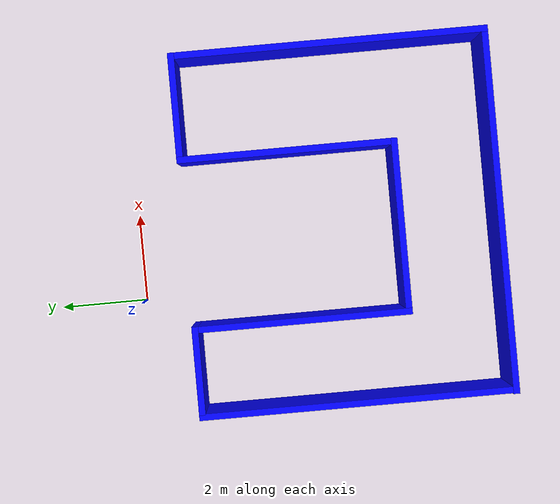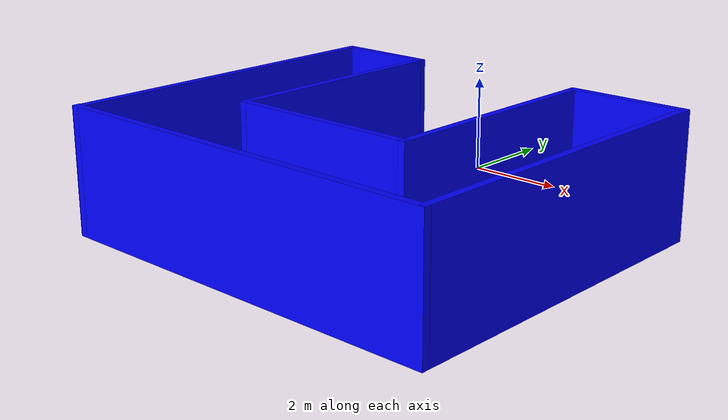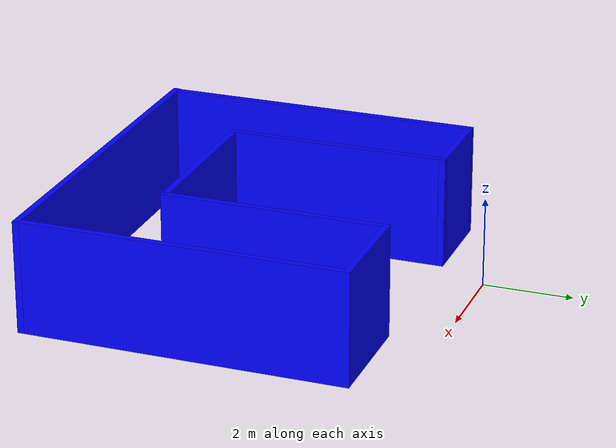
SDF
<?xml version='1.0'?>
<sdf version='1.6'>
  <model name='uworld'>
    <pose frame=''>1.41403 -4.72 0 0 -0 0</pose>
    <link name='Wall_0'>
      <collision name='Wall_0_Collision'>
        <geometry>
          <box>
            <size>2 0.15 2.5</size>
          </box>
        </geometry>
        <pose frame=''>0 0 1.25 0 -0 0</pose>
      </collision>
      <visual name='Wall_0_Visual'>
        <pose frame=''>0 0 1.25 0 -0 0</pose>
        <geometry>
          <box>
            <size>2 0.15 2.5</size>
          </box>
        </geometry>
        <material>
          <script>
            <uri>file://media/materials/scripts/gazebo.material</uri>
            <name>Gazebo/Grey</name>
          </script>
          <ambient>0 0 1 1</ambient>
        </material>
        <meta>
          <layer>0</layer>
        </meta>
      </visual>
      <pose frame=''>-3.02903 3.55 0 0 -0 0</pose>
    </link>
    <link name='Wall_1'>
      <collision name='Wall_1_Collision'>
        <geometry>
          <box>
            <size>5 0.15 2.5</size>
          </box>
        </geometry>
        <pose frame=''>0 0 1.25 0 -0 0</pose>
      </collision>
      <visual name='Wall_1_Visual'>
        <pose frame=''>0 0 1.25 0 -0 0</pose>
        <geometry>
          <box>
            <size>5 0.15 2.5</size>
          </box>
        </geometry>
        <material>
          <script>
            <uri>file://media/materials/scripts/gazebo.material</uri>
            <name>Gazebo/Grey</name>
          </script>
          <ambient>0 0 1 1</ambient>
        </material>
        <meta>
          <layer>0</layer>
        </meta>
      </visual>
      <pose frame=''>-2.10404 1.125 0 0 0 -1.5708</pose>
    </link>
    <link name='Wall_2'>
      <collision name='Wall_2_Collision'>
        <geometry>
          <box>
            <size>4 0.15 2.5</size>
          </box>
        </geometry>
        <pose frame=''>0 0 1.25 0 -0 0</pose>
      </collision>
      <visual name='Wall_2_Visual'>
        <pose frame=''>0 0 1.25 0 -0 0</pose>
        <geometry>
          <box>
            <size>4 0.15 2.5</size>
          </box>
        </geometry>
        <material>
          <script>
            <uri>file://media/materials/scripts/gazebo.material</uri>
            <name>Gazebo/Grey</name>
          </script>
          <ambient>0 0 1 1</ambient>
        </material>
        <meta>
          <layer>0</layer>
        </meta>
      </visual>
      <pose frame=''>-0.179035 -1.3 0 0 -0 0</pose>
    </link>
    <link name='Wall_3'>
      <collision name='Wall_3_Collision'>
        <geometry>
          <box>
            <size>5 0.15 2.5</size>
          </box>
        </geometry>
        <pose frame=''>0 0 1.25 0 -0 0</pose>
      </collision>
      <visual name='Wall_3_Visual'>
        <pose frame=''>0 0 1.25 0 -0 0</pose>
        <geometry>
          <box>
            <size>5 0.15 2.5</size>
          </box>
        </geometry>
        <material>
          <script>
            <uri>file://media/materials/scripts/gazebo.material</uri>
            <name>Gazebo/Grey</name>
          </script>
          <ambient>0 0 1 1</ambient>
        </material>
        <meta>
          <layer>0</layer>
        </meta>
      </visual>
      <pose frame=''>1.74596 1.125 0 0 -0 1.5708</pose>
    </link>
    <link name='Wall_4'>
      <collision name='Wall_4_Collision'>
        <geometry>
          <box>
            <size>2.5 0.15 2.5</size>
          </box>
        </geometry>
        <pose frame=''>0 0 1.25 0 -0 0</pose>
      </collision>
      <visual name='Wall_4_Visual'>
        <pose frame=''>0 0 1.25 0 -0 0</pose>
        <geometry>
          <box>
            <size>2.5 0.15 2.5</size>
          </box>
        </geometry>
        <material>
          <script>
            <uri>file://media/materials/scripts/gazebo.material</uri>
            <name>Gazebo/Grey</name>
          </script>
          <ambient>0 0 1 1</ambient>
        </material>
        <meta>
          <layer>0</layer>
        </meta>
      </visual>
      <pose frame=''>2.92096 3.55 0 0 -0 0</pose>
    </link>
    <link name='Wall_5'>
      <collision name='Wall_5_Collision'>
        <geometry>
          <box>
            <size>7.25 0.15 2.5</size>
          </box>
        </geometry>
        <pose frame=''>0 0 1.25 0 -0 0</pose>
      </collision>
      <visual name='Wall_5_Visual'>
        <pose frame=''>0 0 1.25 0 -0 0</pose>
        <geometry>
          <box>
            <size>7.25 0.15 2.5</size>
          </box>
        </geometry>
        <material>
          <script>
            <uri>file://media/materials/scripts/gazebo.material</uri>
            <name>Gazebo/Grey</name>
          </script>
          <ambient>0 0 1 1</ambient>
        </material>
        <meta>
          <layer>0</layer>
        </meta>
      </visual>
      <pose frame=''>4.09596 0 0 0 0 -1.5708</pose>
    </link>
    <link name='Wall_6'>
      <collision name='Wall_6_Collision'>
        <geometry>
          <box>
            <size>8.34193 0.15 2.5</size>
          </box>
        </geometry>
        <pose frame=''>0 0 1.25 0 -0 0</pose>
      </collision>
      <visual name='Wall_6_Visual'>
        <pose frame=''>0 0 1.25 0 -0 0</pose>
        <geometry>
          <box>
            <size>8.34193 0.15 2.5</size>
          </box>
        </geometry>
        <material>
          <script>
            <uri>file://media/materials/scripts/gazebo.material</uri>
            <name>Gazebo/Grey</name>
          </script>
          <ambient>0 0 1 1</ambient>
        </material>
        <meta>
          <layer>0</layer>
        </meta>
      </visual>
      <pose frame=''>0 -3.55 0 0 -0 3.14159</pose>
    </link>
    <link name='Wall_7'>
      <collision name='Wall_7_Collision'>
        <geometry>
          <box>
            <size>7.25 0.15 2.5</size>
          </box>
        </geometry>
        <pose frame=''>0 0 1.25 0 -0 0</pose>
      </collision>
      <visual name='Wall_7_Visual'>
        <pose frame=''>0 0 1.25 0 -0 0</pose>
        <geometry>
          <box>
            <size>7.25 0.15 2.5</size>
          </box>
        </geometry>
        <material>
          <script>
            <uri>file://media/materials/scripts/gazebo.material</uri>
            <name>Gazebo/Grey</name>
          </script>
          <ambient>0 0 1 1</ambient>
        </material>
        <meta>
          <layer>0</layer>
        </meta>
      </visual>
      <pose frame=''>-4.07585 0 0 0 -0 1.5708</pose>
    </link>
    <static>1</static>
  </model>
</sdf>
